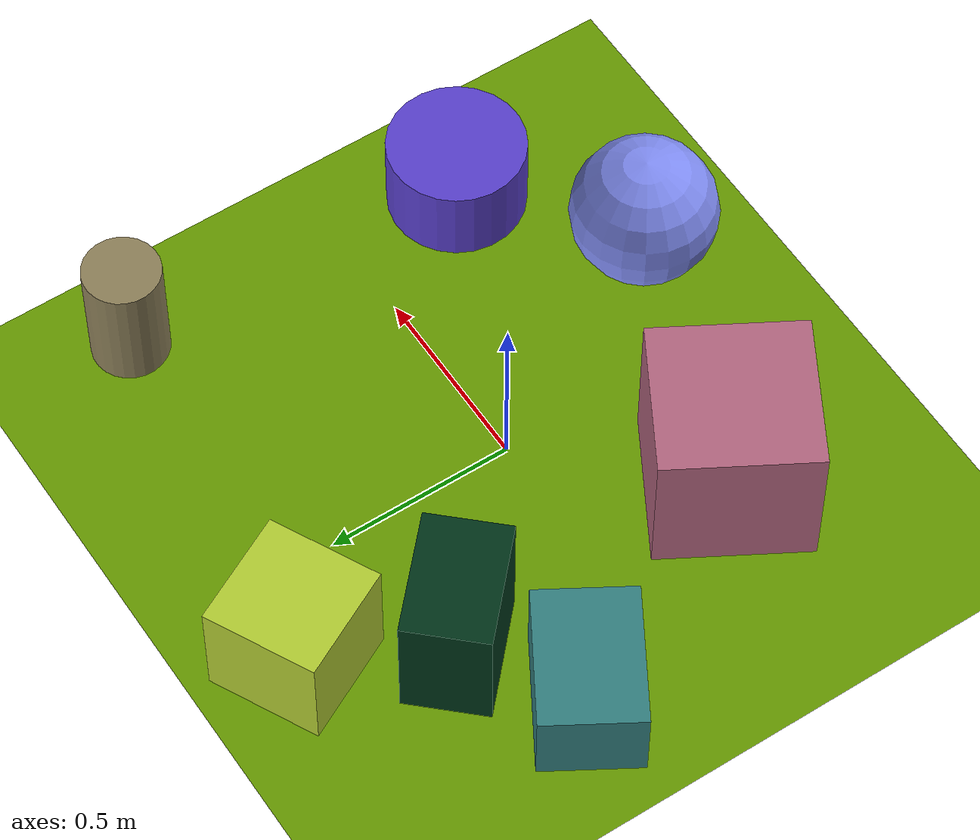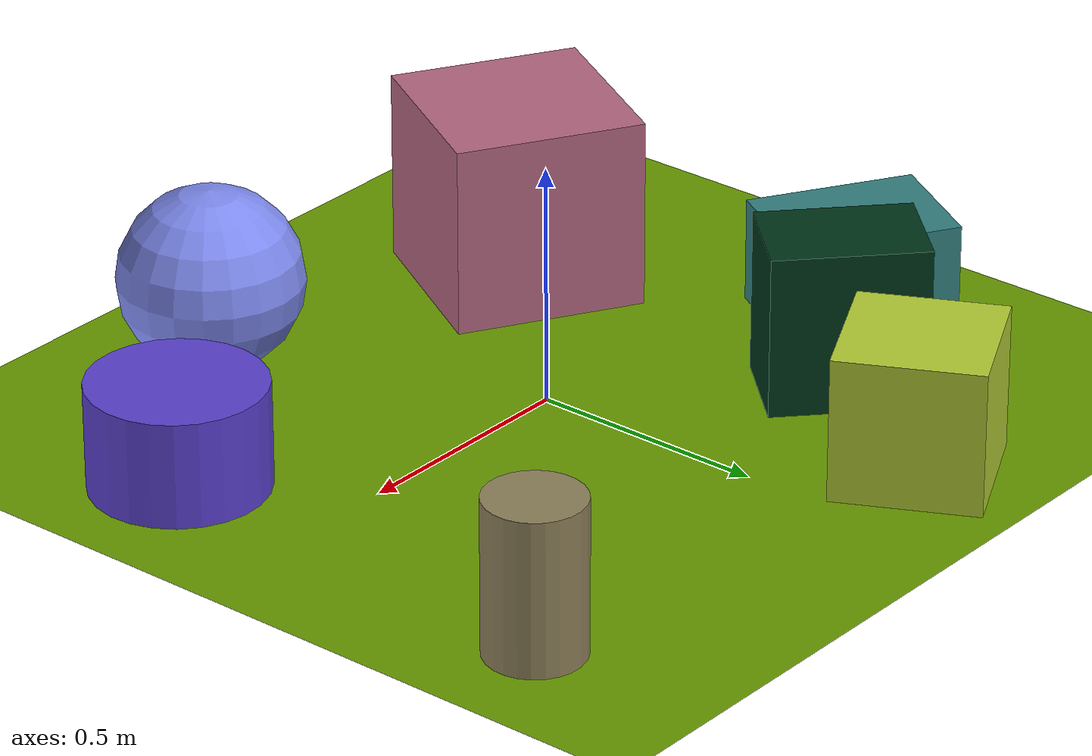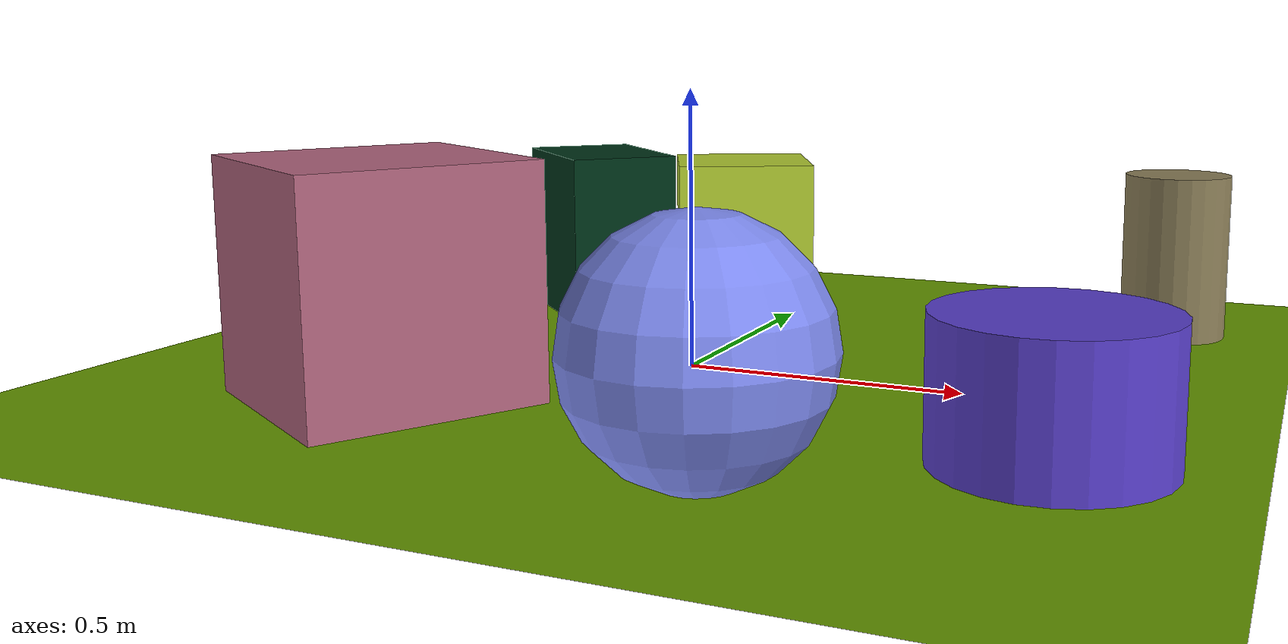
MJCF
<mujoco>
   <asset>
<texture type="skybox" builtin="gradient" rgb1="1.0 0.8 0.3" rgb2="0.8 0.2 0.8" width="500" height="500"/>
<texture name="checker_0" builtin="checker" rgb1="0.8 1.0 1.0" rgb2="0.2 0.1 0.9" width="500" height="500"/>
<texture name="checker_1" builtin="checker" rgb1="0.8 0.0 0.6" rgb2="0.6 0.8 0.4" width="500" height="500"/>
<texture name="flat_2" builtin="flat" rgb1="0.7 0.8 0.2" rgb2="0.7 0.8 0.2"  width="500" height="500"/>
<texture name="flat_3" builtin="flat" rgb1="0.0 0.2 0.1" rgb2="0.0 0.2 0.1"  width="500" height="500"/>
<texture name="flat_4" builtin="flat" rgb1="0.2 0.5 0.5" rgb2="0.2 0.5 0.5"  width="500" height="500"/>
<texture name="gradient_5" builtin="gradient" rgb1="0.4 0.3 0.6" rgb2="0.3 0.2 1.0" width="500" height="500"/>
<texture name="gradient_6" builtin="gradient" rgb1="0.6 0.1 0.6" rgb2="0.5 0.9 0.1" width="500" height="500"/><material name="checker_0_mat" reflectance="0.5328305406976632" texrepeat="9 9" texture="checker_0" texuniform="false" />
<material name="checker_1_mat" reflectance="0.36352421136921953" texrepeat="3 3" texture="checker_1" texuniform="false" />
<material name="flat_2_mat" reflectance="0.4973732353578161" texture="flat_2" texuniform="true"/>
<material name="flat_3_mat" reflectance="0.556901629273735" texture="flat_3" texuniform="true"/>
<material name="flat_4_mat" reflectance="0.4867477429167306" texture="flat_4" texuniform="true"/>
<material name="gradient_5_mat" reflectance="0.25025414044323646" texture="gradient_5" texuniform="true"/>
<material name="gradient_6_mat" reflectance="0.7193203340045226" texture="gradient_6" texuniform="true"/>
   </asset>

   <worldbody>
     <geom type="plane" size="1 1 0.1" rgba="0.4 0.6 0.0 1" />
<light pos="0.6382824775544771 0.11362379660652477 2" dir="0 0 -1" cutoff="90" diffuse="1 1 1" specular="1 1 1"/>
<geom type="sphere" pos="0.3 -0.61 0.19" size="0.19 0.19 0.19" material="checker_0_mat" euler="0 0 38" />
<geom type="box" pos="-0.38 -0.39 0.2" size="0.2 0.2 0.2" material="checker_1_mat" euler="0 0 60" />
<geom type="box" pos="-0.22 0.74 0.15" size="0.15 0.15 0.15" material="flat_2_mat" euler="0 0 27" />
<geom type="box" pos="-0.41 0.41 0.17" size="0.11 0.16 0.17" material="flat_3_mat" euler="0 0 47" />
<geom type="box" pos="-0.69 0.23 0.11" size="0.13 0.18 0.11" material="flat_4_mat" euler="0 0 59" />
<geom type="cylinder" pos="0.71 -0.32 0.11" size="0.18 0.11 0.11" material="gradient_5_mat" euler="0 0 56" />
<geom type="cylinder" pos="0.77 0.61 0.16" size="0.1 0.16 0.16" material="gradient_6_mat" euler="0 0 81" /><camera euler="60 0 180" fovy="60" name="camera1" pos="-0.2 -1.5 1"></camera>   </worldbody>
   <visual>
      <headlight diffuse="0.7 0.7 0.7"/>
   </visual>
</mujoco>
